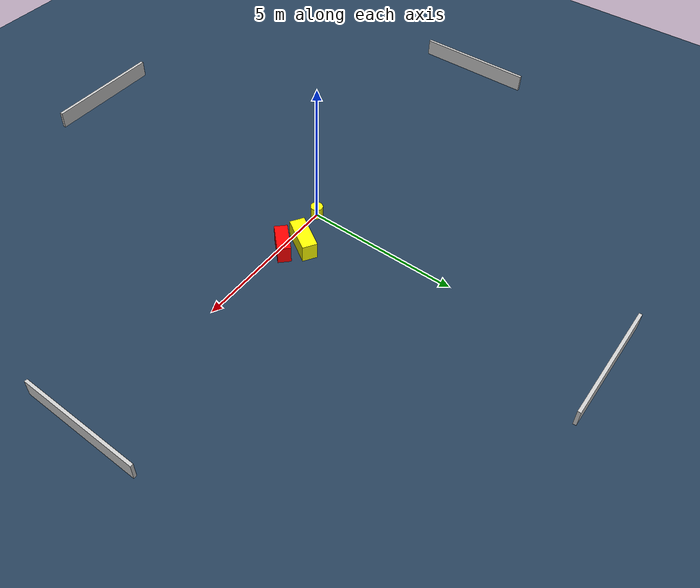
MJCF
<?xml version="1.0" ?>
<mujoco model="generated_environment">
  <option timestep="0.01" integrator="RK4" cone="elliptic"/>
  <default>
    <geom density="1"/>
  </default>
  <asset>
    <texture builtin="gradient" height="3072" name="skybox" rgb1="0.3 0.5 0.7" rgb2="0 0 0" type="skybox" width="512"/>
    <texture builtin="checker" height="300" name="groundplane" rgb1="0.2 0.3 0.4" rgb2="0.1 0.2 0.3" type="2d" width="300"/>
    <material name="groundplane" reflectance="0.2" texrepeat="5 5" texture="groundplane"/>
  </asset>
  <worldbody>
    <light dir="0 0 -1" directional="true" pos="0 0 1.5"/>
    <geom condim="3" friction="0.5 0.005 0.001" material="groundplane" name="floor" pos="0 0 0" size="0 0 0.05" type="plane"/>
    <body name="walls">
      <geom name="wall_1" condim="4" pos="-10.0 0.0 0.3" rgba="0.800000011920929 0.800000011920929 0.800000011920929 1.0" size="0.05 2.0 0.3" type="box"/>
      <geom name="wall_2" condim="4" pos="10.0 0.0 0.3" rgba="0.800000011920929 0.800000011920929 0.800000011920929 1.0" size="0.05 2.0 0.3" type="box"/>
      <geom name="wall_3" condim="4" pos="0.0 -10.0 0.3" rgba="0.800000011920929 0.800000011920929 0.800000011920929 1.0" size="2.0 0.05 0.3" type="box"/>
      <geom name="wall_4" condim="4" pos="0.0 10.0 0.3" rgba="0.800000011920929 0.800000011920929 0.800000011920929 1.0" size="2.0 0.05 0.3" type="box"/>
    </body>
    <body name="robot">
      <joint name="joint_x" type="slide" pos="0 0 0" axis="1 0 0"/>
      <joint name="joint_y" type="slide" pos="0 0 0" axis="0 1 0"/>
      <geom name="robot" type="cylinder" pos="0.0 0.0 0.2" size="0.2 0.2 0.0" mass="5.0" friction="1.0 0.005 0.0001" condim="4" rgba="1.0 1.0 0.0 1.0"/>
    </body>
    <body name="obstacle_1_movable">
      <geom name="obstacle_1_movable" condim="4" pos="1.3297915570076349 0.49432017073484286 0.3" euler="0 0 237.90248434742296" friction="0.0 0.005 0.001" rgba="1.0 1.0 0.0 1.0" size="0.6002706263429718 0.24658543406077277 0.3" type="box" mass="0.1"/>
      <joint type="free"/>
    </body>
    <body name="obstacle_2_static">
      <geom name="obstacle_2_static" condim="4" pos="1.8701267078200234 0.10246108293411657 0.3" euler="0 0 315.1522410676846" friction="0.0 0.005 0.001" rgba="1.0 0.0 0.0 1.0" size="0.2121212170410428 0.4929126137044351 0.3" type="box"/>
    </body>
  </worldbody>
  <actuator>
    <motor name="actuator_x" joint="joint_x" gear="1" ctrlrange="-1 1"/>
    <motor name="actuator_y" joint="joint_y" gear="1" ctrlrange="-1 1"/>
  </actuator>
</mujoco>
